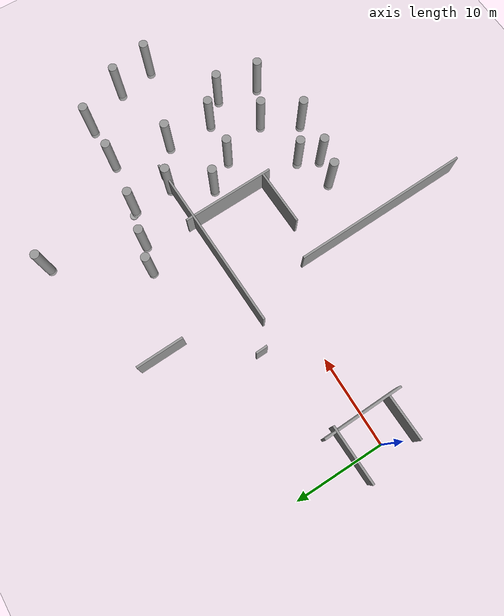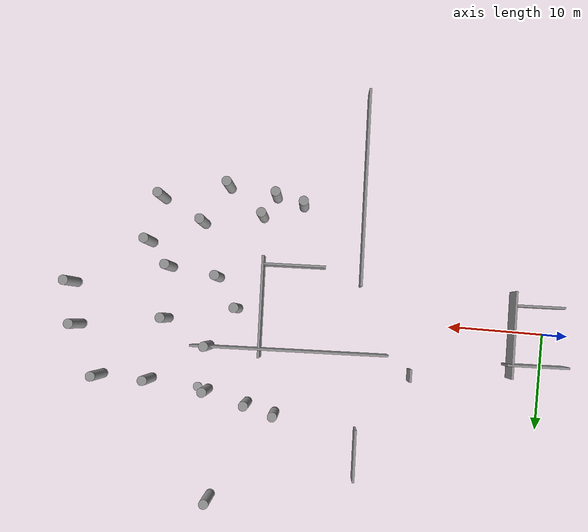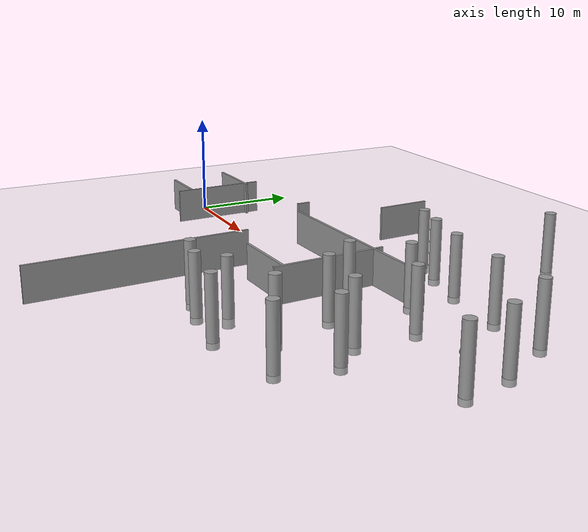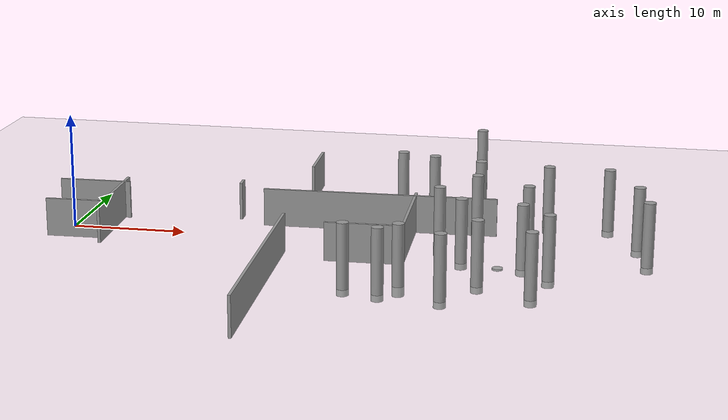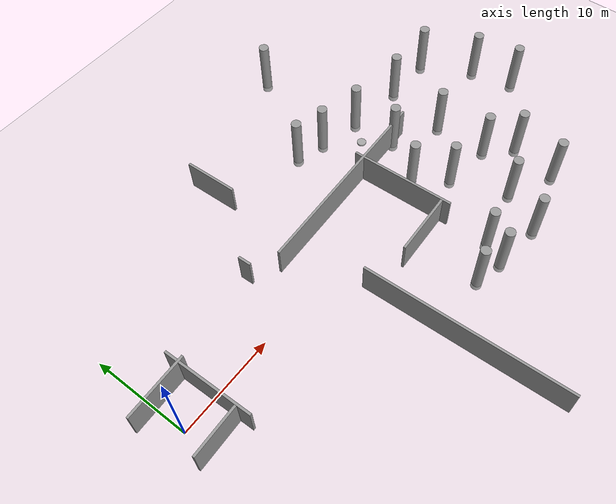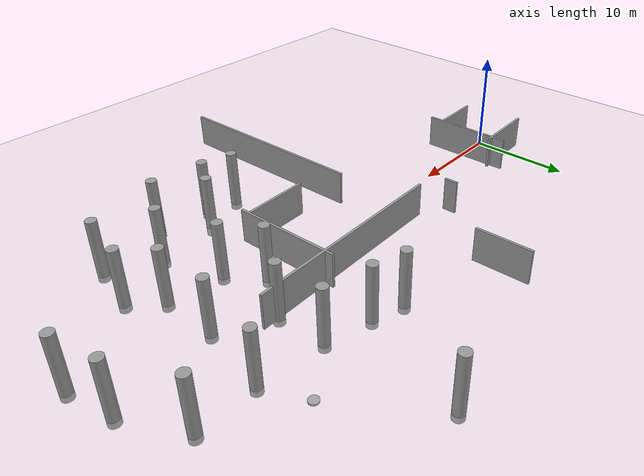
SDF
<sdf version="1.6">
 <world name="default">
  <plugin name="disable_physics" filename="libdisable_physics.so"/>
  <light name="sun" type="directional">
   <cast_shadows>0</cast_shadows>
   <pose>0 0 10 0 -0 0</pose>
   <diffuse>0.8 0.8 0.8 1</diffuse>
   <specular>0.2 0.2 0.2 1</specular>
   <attenuation>
    <range>1000</range>
    <constant>0.9</constant>
    <linear>0.01</linear>
    <quadratic>0.001</quadratic>
   </attenuation>
   <direction>-0.5 0.1 -0.9</direction>
  </light>
  <model name="ground_plane">
   <static>1</static>
   <link name="link">
    <collision name="collision">
     <geometry><plane><normal>0 0 1</normal><size>200 200</size></plane></geometry>
     <surface><friction><ode><mu>100</mu><mu2>50</mu2></ode></friction></surface>
    </collision>
    <visual name="visual">
     <cast_shadows>0</cast_shadows>
     <geometry><plane><normal>0 0 1</normal><size>200 200</size></plane></geometry>
     <material>
      <script><uri>file://media/materials/scripts/gazebo.material</uri><name>Gazebo/Grey</name></script>
     </material>
    </visual>
    <gravity>0</gravity>
   </link>
  </model>
  <physics name="default_physics" default="0" type="ode">
   <max_step_size>0.001</max_step_size>
   <real_time_factor>1</real_time_factor>
   <real_time_update_rate>1000</real_time_update_rate>
  </physics>
  <scene><ambient>0.4 0.4 0.4 1</ambient><background>0.7 0.7 0.7 1</background><shadows>0</shadows></scene>
  <spherical_coordinates>
   <surface_model>EARTH_WGS84</surface_model>
   <latitude_deg>0</latitude_deg>
   <longitude_deg>0</longitude_deg>
   <elevation>0</elevation>
   <heading_deg>0</heading_deg>
  </spherical_coordinates>
  <gravity>0 0 0</gravity>
  <magnetic_field>6e-06 2.3e-05 -4.2e-05</magnetic_field>
  <atmosphere type="adiabatic"/>
  <model name="unit_box_0_0_clone_0">
   <pose>13.8877 5.33164 1.66667 -0.000226 9e-06 0.034068</pose>
   <link name="link">
    <inertial>
     <mass>1</mass>
     <inertia>
      <ixx>0.166667</ixx>
      <ixy>0</ixy>
      <ixz>0</ixz>
      <iyy>0.166667</iyy>
      <iyz>0</iyz>
      <izz>0.166667</izz>
     </inertia>
    </inertial>
    <collision name="collision">
     <geometry><box><size>0.237691 1.30553 3.33454</size></box></geometry>
     <surface><contact><collide_without_contact>1</collide_without_contact></contact></surface>
    </collision>
    <visual name="visual">
     <geometry><box><size>0.237691 1.30553 3.33454</size></box></geometry>
     <material>
      <script><name>Gazebo/Grey</name><uri>file://media/materials/scripts/gazebo.material</uri></script>
     </material>
    </visual>
    <gravity>0</gravity>
   </link>
  </model>
  <model name="unit_cylinder_0">
   <pose>36.5123 8.86063 -4.58861 0 -0 0</pose>
   <link name="link">
    <inertial>
     <mass>1</mass>
     <inertia><ixx>0.145833</ixx><ixy>0</ixy><ixz>0</ixz><iyy>0.145833</iyy><iyz>0</iyz><izz>0.125</izz></inertia>
    </inertial>
    <collision name="collision">
     <geometry><cylinder><radius>0.5</radius><length>0.165744</length></cylinder></geometry>
     <surface><contact><collide_without_contact>1</collide_without_contact></contact></surface>
    </collision>
    <visual name="visual">
     <geometry><cylinder><radius>0.5</radius><length>0.165744</length></cylinder></geometry>
     <material>
      <script><name>Gazebo/Grey</name><uri>file://media/materials/scripts/gazebo.material</uri></script>
     </material>
    </visual>
    <gravity>0</gravity>
   </link>
  </model>
  <model name="unit_cylinder_0_clone_14">
   <pose>30.4731 -9.99792 2.11259 0 -0 0.001073</pose>
   <link name="link">
    <inertial>
     <mass>1</mass>
     <inertia><ixx>0.145833</ixx><ixy>0</ixy><ixz>0</ixz><iyy>0.145833</iyy><iyz>0</iyz><izz>0.125</izz></inertia>
    </inertial>
    <collision name="collision">
     <geometry><cylinder><radius>0.5</radius><length>6.03342</length></cylinder></geometry>
     <surface><contact><collide_without_contact>1</collide_without_contact></contact></surface>
    </collision>
    <visual name="visual">
     <geometry><cylinder><radius>0.5</radius><length>6.03342</length></cylinder></geometry>
     <material>
      <script><name>Gazebo/Grey</name><uri>file://media/materials/scripts/gazebo.material</uri></script>
     </material>
    </visual>
    <gravity>0</gravity>
   </link>
  </model>
  <model name="unit_box_0_0_clone_0_clone">
   <pose>18.9776 14.0221 1.66667 -0.000226 9e-06 0.034061</pose>
   <link name="link">
    <inertial>
     <mass>1</mass>
     <inertia>
      <ixx>0.166667</ixx>
      <ixy>0</ixy>
      <ixz>0</ixz>
      <iyy>0.166667</iyy>
      <iyz>0</iyz>
      <izz>0.166667</izz>
     </inertia>
    </inertial>
    <collision name="collision">
     <geometry><box><size>0.237691 5.35847 3.33454</size></box></geometry>
     <surface><contact><collide_without_contact>1</collide_without_contact></contact></surface>
    </collision>
    <visual name="visual">
     <geometry><box><size>0.237691 5.35847 3.33454</size></box></geometry>
     <material>
      <script><name>Gazebo/Grey</name><uri>file://media/materials/scripts/gazebo.material</uri></script>
     </material>
    </visual>
    <gravity>0</gravity>
   </link>
  </model>
  <model name="unit_box_0_0_clone_0_clone_clone">
   <pose>20.034 -13.669 1.66667 -0.000226 9e-06 0.034061</pose>
   <link name="link">
    <inertial>
     <mass>1</mass>
     <inertia>
      <ixx>0.166667</ixx>
      <ixy>0</ixy>
      <ixz>0</ixz>
      <iyy>0.166667</iyy>
      <iyz>0</iyz>
      <izz>0.166667</izz>
     </inertia>
    </inertial>
    <collision name="collision">
     <geometry><box><size>0.237691 20.4927 3.33454</size></box></geometry>
     <surface><contact><collide_without_contact>1</collide_without_contact></contact></surface>
    </collision>
    <visual name="visual">
     <geometry><box><size>0.237691 20.4927 3.33454</size></box></geometry>
     <material>
      <script><name>Gazebo/Grey</name><uri>file://media/materials/scripts/gazebo.material</uri></script>
     </material>
    </visual>
    <gravity>0</gravity>
   </link>
  </model>
  <model name="unit_box_0_0_clone_0_clone_clone_0">
   <pose>26.5741 3.7947 1.66667 8e-06 0.000226 1.60099</pose>
   <link name="link">
    <inertial>
     <mass>1</mass>
     <inertia>
      <ixx>0.166667</ixx>
      <ixy>0</ixy>
      <ixz>0</ixz>
      <iyy>0.166667</iyy>
      <iyz>0</iyz>
      <izz>0.166667</izz>
     </inertia>
    </inertial>
    <collision name="collision">
     <geometry><box><size>0.237691 20.4928 3.33454</size></box></geometry>
     <surface><contact><collide_without_contact>1</collide_without_contact></contact></surface>
    </collision>
    <visual name="visual">
     <geometry><box><size>0.237691 20.4928 3.33454</size></box></geometry>
     <material>
      <script><name>Gazebo/Grey</name><uri>file://media/materials/scripts/gazebo.material</uri></script>
     </material>
    </visual>
    <gravity>0</gravity>
   </link>
  </model>
  <model name="unit_box_0_0_clone_0_clone_clone_0_clone">
   <pose>29.8508 -0.508676 1.66667 -0.000226 9e-06 0.034061</pose>
   <link name="link">
    <inertial>
     <mass>1</mass>
     <inertia>
      <ixx>0.166667</ixx>
      <ixy>0</ixy>
      <ixz>0</ixz>
      <iyy>0.166667</iyy>
      <iyz>0</iyz>
      <izz>0.166667</izz>
     </inertia>
    </inertial>
    <collision name="collision">
     <geometry><box><size>0.237691 10.584 3.33454</size></box></geometry>
     <surface><contact><collide_without_contact>1</collide_without_contact></contact></surface>
    </collision>
    <visual name="visual">
     <geometry><box><size>0.237691 10.584 3.33454</size></box></geometry>
     <material>
      <script><name>Gazebo/Grey</name><uri>file://media/materials/scripts/gazebo.material</uri></script>
     </material>
    </visual>
    <gravity>0</gravity>
   </link>
  </model>
  <model name="unit_box_0_0_clone_0_clone_clone_0_clone_0">
   <pose>26.6881 -5.02762 1.66667 8e-06 0.000226 1.60099</pose>
   <link name="link">
    <inertial>
     <mass>1</mass>
     <inertia>
      <ixx>0.166667</ixx>
      <ixy>0</ixy>
      <ixz>0</ixz>
      <iyy>0.166667</iyy>
      <iyz>0</iyz>
      <izz>0.166667</izz>
     </inertia>
    </inertial>
    <collision name="collision">
     <geometry><box><size>0.237691 6.4029 3.33454</size></box></geometry>
     <surface><contact><collide_without_contact>1</collide_without_contact></contact></surface>
    </collision>
    <visual name="visual">
     <geometry><box><size>0.237691 6.4029 3.33454</size></box></geometry>
     <material>
      <script><name>Gazebo/Grey</name><uri>file://media/materials/scripts/gazebo.material</uri></script>
     </material>
    </visual>
    <gravity>0</gravity>
   </link>
  </model>
  <model name="unit_box_0_0_clone_0_clone_clone_0_clone_clone">
   <pose>3.56833 0.275438 1.66667 -0.000226 6e-06 0.022264</pose>
   <link name="link">
    <inertial>
     <mass>1</mass>
     <inertia>
      <ixx>0.166667</ixx>
      <ixy>0</ixy>
      <ixz>0</ixz>
      <iyy>0.166667</iyy>
      <iyz>0</iyz>
      <izz>0.166667</izz>
     </inertia>
    </inertial>
    <collision name="collision">
     <geometry><box><size>0.237691 9.07342 3.33454</size></box></geometry>
     <surface><contact><collide_without_contact>1</collide_without_contact></contact></surface>
    </collision>
    <visual name="visual">
     <geometry><box><size>0.237691 9.07342 3.33454</size></box></geometry>
     <material>
      <script><name>Gazebo/Grey</name><uri>file://media/materials/scripts/gazebo.material</uri></script>
     </material>
    </visual>
    <gravity>0</gravity>
   </link>
  </model>
  <model name="unit_box_0_0_clone_0_clone_clone_0_clone_1">
   <pose>0.87092 3.30763 1.66667 8e-06 0.000226 1.60099</pose>
   <link name="link">
    <inertial>
     <mass>1</mass>
     <inertia>
      <ixx>0.166667</ixx>
      <ixy>0</ixy>
      <ixz>0</ixz>
      <iyy>0.166667</iyy>
      <iyz>0</iyz>
      <izz>0.166667</izz>
     </inertia>
    </inertial>
    <collision name="collision">
     <geometry><box><size>0.237691 6.40289 3.33454</size></box></geometry>
     <surface><contact><collide_without_contact>1</collide_without_contact></contact></surface>
    </collision>
    <visual name="visual">
     <geometry><box><size>0.237691 6.40289 3.33454</size></box></geometry>
     <material>
      <script><name>Gazebo/Grey</name><uri>file://media/materials/scripts/gazebo.material</uri></script>
     </material>
    </visual>
    <gravity>0</gravity>
   </link>
  </model>
  <model name="unit_box_0_0_clone_0_clone_clone_0_clone_1_clone">
   <pose>1.12991 -2.86226 1.66667 8e-06 0.000226 1.60099</pose>
   <link name="link">
    <inertial>
     <mass>1</mass>
     <inertia>
      <ixx>0.166667</ixx>
      <ixy>0</ixy>
      <ixz>0</ixz>
      <iyy>0.166667</iyy>
      <iyz>0</iyz>
      <izz>0.166667</izz>
     </inertia>
    </inertial>
    <collision name="collision">
     <geometry><box><size>0.237691 5.13398 3.33454</size></box></geometry>
     <surface><contact><collide_without_contact>1</collide_without_contact></contact></surface>
    </collision>
    <visual name="visual">
     <geometry><box><size>0.237691 5.13398 3.33454</size></box></geometry>
     <material>
      <script><name>Gazebo/Grey</name><uri>file://media/materials/scripts/gazebo.material</uri></script>
     </material>
    </visual>
    <gravity>0</gravity>
   </link>
  </model>
  <model name="unit_cylinder_0_clone_14_clone">
   <pose>34.8945 8.63353 2.40172 0 -0 0.001073</pose>
   <link name="link">
    <inertial>
     <mass>1</mass>
     <inertia><ixx>0.145833</ixx><ixy>0</ixy><ixz>0</ixz><iyy>0.145833</iyy><iyz>0</iyz><izz>0.125</izz></inertia>
    </inertial>
    <collision name="collision">
     <geometry><cylinder><radius>0.5</radius><length>6.03342</length></cylinder></geometry>
     <surface><contact><collide_without_contact>1</collide_without_contact></contact></surface>
    </collision>
    <visual name="visual">
     <geometry><cylinder><radius>0.5</radius><length>6.03342</length></cylinder></geometry>
     <material>
      <script><name>Gazebo/Grey</name><uri>file://media/materials/scripts/gazebo.material</uri></script>
     </material>
    </visual>
    <gravity>0</gravity>
   </link>
  </model>
  <model name="unit_cylinder_0_clone_14_clone_0">
   <pose>39.7254 1.47591 2.40172 0 -0 0.001073</pose>
   <link name="link">
    <inertial>
     <mass>1</mass>
     <inertia><ixx>0.145833</ixx><ixy>0</ixy><ixz>0</ixz><iyy>0.145833</iyy><iyz>0</iyz><izz>0.125</izz></inertia>
    </inertial>
    <collision name="collision">
     <geometry><cylinder><radius>0.5</radius><length>6.03342</length></cylinder></geometry>
     <surface><contact><collide_without_contact>1</collide_without_contact></contact></surface>
    </collision>
    <visual name="visual">
     <geometry><cylinder><radius>0.5</radius><length>6.03342</length></cylinder></geometry>
     <material>
      <script><name>Gazebo/Grey</name><uri>file://media/materials/scripts/gazebo.material</uri></script>
     </material>
    </visual>
    <gravity>0</gravity>
   </link>
  </model>
  <model name="unit_cylinder_0_clone_14_clone_1">
   <pose>34.6294 -3.2579 2.40172 0 -0 0.001073</pose>
   <link name="link">
    <inertial>
     <mass>1</mass>
     <inertia><ixx>0.145833</ixx><ixy>0</ixy><ixz>0</ixz><iyy>0.145833</iyy><iyz>0</iyz><izz>0.125</izz></inertia>
    </inertial>
    <collision name="collision">
     <geometry><cylinder><radius>0.5</radius><length>6.03342</length></cylinder></geometry>
     <surface><contact><collide_without_contact>1</collide_without_contact></contact></surface>
    </collision>
    <visual name="visual">
     <geometry><cylinder><radius>0.5</radius><length>6.03342</length></cylinder></geometry>
     <material>
      <script><name>Gazebo/Grey</name><uri>file://media/materials/scripts/gazebo.material</uri></script>
     </material>
    </visual>
    <gravity>0</gravity>
   </link>
  </model>
  <model name="unit_cylinder_0_clone_14_clone_2">
   <pose>35.1198 4.01966 2.40172 0 -0 0.001073</pose>
   <link name="link">
    <inertial>
     <mass>1</mass>
     <inertia><ixx>0.145833</ixx><ixy>0</ixy><ixz>0</ixz><iyy>0.145833</iyy><iyz>0</iyz><izz>0.125</izz></inertia>
    </inertial>
    <collision name="collision">
     <geometry><cylinder><radius>0.5</radius><length>6.03342</length></cylinder></geometry>
     <surface><contact><collide_without_contact>1</collide_without_contact></contact></surface>
    </collision>
    <visual name="visual">
     <geometry><cylinder><radius>0.5</radius><length>6.03342</length></cylinder></geometry>
     <material>
      <script><name>Gazebo/Grey</name><uri>file://media/materials/scripts/gazebo.material</uri></script>
     </material>
    </visual>
    <gravity>0</gravity>
   </link>
  </model>
  <model name="unit_cylinder_0_clone_14_clone_3">
   <pose>40.9597 7.945 2.40172 0 -0 0.001073</pose>
   <link name="link">
    <inertial>
     <mass>1</mass>
     <inertia><ixx>0.145833</ixx><ixy>0</ixy><ixz>0</ixz><iyy>0.145833</iyy><iyz>0</iyz><izz>0.125</izz></inertia>
    </inertial>
    <collision name="collision">
     <geometry><cylinder><radius>0.5</radius><length>6.03342</length></cylinder></geometry>
     <surface><contact><collide_without_contact>1</collide_without_contact></contact></surface>
    </collision>
    <visual name="visual">
     <geometry><cylinder><radius>0.5</radius><length>6.03342</length></cylinder></geometry>
     <material>
      <script><name>Gazebo/Grey</name><uri>file://media/materials/scripts/gazebo.material</uri></script>
     </material>
    </visual>
    <gravity>0</gravity>
   </link>
  </model>
  <model name="unit_cylinder_0_clone_14_clone_4">
   <pose>48.8594 2.85128 2.40172 0 -0 0.001073</pose>
   <link name="link">
    <inertial>
     <mass>1</mass>
     <inertia><ixx>0.145833</ixx><ixy>0</ixy><ixz>0</ixz><iyy>0.145833</iyy><iyz>0</iyz><izz>0.125</izz></inertia>
    </inertial>
    <collision name="collision">
     <geometry><cylinder><radius>0.5</radius><length>6.03342</length></cylinder></geometry>
     <surface><contact><collide_without_contact>1</collide_without_contact></contact></surface>
    </collision>
    <visual name="visual">
     <geometry><cylinder><radius>0.5</radius><length>6.03342</length></cylinder></geometry>
     <material>
      <script><name>Gazebo/Grey</name><uri>file://media/materials/scripts/gazebo.material</uri></script>
     </material>
    </visual>
    <gravity>0</gravity>
   </link>
  </model>
  <model name="unit_cylinder_0_clone_14_clone_5">
   <pose>42.0529 -6.41265 2.40172 0 -0 0.001073</pose>
   <link name="link">
    <inertial>
     <mass>1</mass>
     <inertia><ixx>0.145833</ixx><ixy>0</ixy><ixz>0</ixz><iyy>0.145833</iyy><iyz>0</iyz><izz>0.125</izz></inertia>
    </inertial>
    <collision name="collision">
     <geometry><cylinder><radius>0.5</radius><length>6.03342</length></cylinder></geometry>
     <surface><contact><collide_without_contact>1</collide_without_contact></contact></surface>
    </collision>
    <visual name="visual">
     <geometry><cylinder><radius>0.5</radius><length>6.03342</length></cylinder></geometry>
     <material>
      <script><name>Gazebo/Grey</name><uri>file://media/materials/scripts/gazebo.material</uri></script>
     </material>
    </visual>
    <gravity>0</gravity>
   </link>
  </model>
  <model name="unit_cylinder_0_clone_14_clone_6">
   <pose>36.6057 -8.82465 2.40172 0 -0 0.001073</pose>
   <link name="link">
    <inertial>
     <mass>1</mass>
     <inertia><ixx>0.145833</ixx><ixy>0</ixy><ixz>0</ixz><iyy>0.145833</iyy><iyz>0</iyz><izz>0.125</izz></inertia>
    </inertial>
    <collision name="collision">
     <geometry><cylinder><radius>0.5</radius><length>6.03342</length></cylinder></geometry>
     <surface><contact><collide_without_contact>1</collide_without_contact></contact></surface>
    </collision>
    <visual name="visual">
     <geometry><cylinder><radius>0.5</radius><length>6.03342</length></cylinder></geometry>
     <material>
      <script><name>Gazebo/Grey</name><uri>file://media/materials/scripts/gazebo.material</uri></script>
     </material>
    </visual>
    <gravity>0</gravity>
   </link>
  </model>
  <model name="unit_cylinder_0_clone_14_clone_7">
   <pose>49.7522 -1.51213 2.40172 0 -0 0.001073</pose>
   <link name="link">
    <inertial>
     <mass>1</mass>
     <inertia><ixx>0.145833</ixx><ixy>0</ixy><ixz>0</ixz><iyy>0.145833</iyy><iyz>0</iyz><izz>0.125</izz></inertia>
    </inertial>
    <collision name="collision">
     <geometry><cylinder><radius>0.5</radius><length>6.03342</length></cylinder></geometry>
     <surface><contact><collide_without_contact>1</collide_without_contact></contact></surface>
    </collision>
    <visual name="visual">
     <geometry><cylinder><radius>0.5</radius><length>6.03342</length></cylinder></geometry>
     <material>
      <script><name>Gazebo/Grey</name><uri>file://media/materials/scripts/gazebo.material</uri></script>
     </material>
    </visual>
    <gravity>0</gravity>
   </link>
  </model>
  <model name="unit_cylinder_0_clone_14_clone_8">
   <pose>46.1829 7.9359 2.40172 0 -0 0.001073</pose>
   <link name="link">
    <inertial>
     <mass>1</mass>
     <inertia><ixx>0.145833</ixx><ixy>0</ixy><ixz>0</ixz><iyy>0.145833</iyy><iyz>0</iyz><izz>0.125</izz></inertia>
    </inertial>
    <collision name="collision">
     <geometry><cylinder><radius>0.5</radius><length>6.03342</length></cylinder></geometry>
     <surface><contact><collide_without_contact>1</collide_without_contact></contact></surface>
    </collision>
    <visual name="visual">
     <geometry><cylinder><radius>0.5</radius><length>6.03342</length></cylinder></geometry>
     <material>
      <script><name>Gazebo/Grey</name><uri>file://media/materials/scripts/gazebo.material</uri></script>
     </material>
    </visual>
    <gravity>0</gravity>
   </link>
  </model>
  <model name="unit_cylinder_0_clone_14_clone_9">
   <pose>30.626 9.6448 2.40172 0 -0 0.001073</pose>
   <link name="link">
    <inertial>
     <mass>1</mass>
     <inertia><ixx>0.145833</ixx><ixy>0</ixy><ixz>0</ixz><iyy>0.145833</iyy><iyz>0</iyz><izz>0.125</izz></inertia>
    </inertial>
    <collision name="collision">
     <geometry><cylinder><radius>0.5</radius><length>6.03342</length></cylinder></geometry>
     <surface><contact><collide_without_contact>1</collide_without_contact></contact></surface>
    </collision>
    <visual name="visual">
     <geometry><cylinder><radius>0.5</radius><length>6.03342</length></cylinder></geometry>
     <material>
      <script><name>Gazebo/Grey</name><uri>file://media/materials/scripts/gazebo.material</uri></script>
     </material>
    </visual>
    <gravity>0</gravity>
   </link>
  </model>
  <model name="unit_cylinder_0_clone_14_clone_10">
   <pose>27.6346 10.4863 2.40172 0 -0 0.001073</pose>
   <link name="link">
    <inertial>
     <mass>1</mass>
     <inertia><ixx>0.145833</ixx><ixy>0</ixy><ixz>0</ixz><iyy>0.145833</iyy><iyz>0</iyz><izz>0.125</izz></inertia>
    </inertial>
    <collision name="collision">
     <geometry><cylinder><radius>0.5</radius><length>6.03342</length></cylinder></geometry>
     <surface><contact><collide_without_contact>1</collide_without_contact></contact></surface>
    </collision>
    <visual name="visual">
     <geometry><cylinder><radius>0.5</radius><length>6.03342</length></cylinder></geometry>
     <material>
      <script><name>Gazebo/Grey</name><uri>file://media/materials/scripts/gazebo.material</uri></script>
     </material>
    </visual>
    <gravity>0</gravity>
   </link>
  </model>
  <model name="unit_cylinder_0_clone_14_clone_11">
   <pose>39.7289 -3.95269 2.40172 0 -0 0.001073</pose>
   <link name="link">
    <inertial>
     <mass>1</mass>
     <inertia><ixx>0.145833</ixx><ixy>0</ixy><ixz>0</ixz><iyy>0.145833</iyy><iyz>0</iyz><izz>0.125</izz></inertia>
    </inertial>
    <collision name="collision">
     <geometry><cylinder><radius>0.5</radius><length>6.03342</length></cylinder></geometry>
     <surface><contact><collide_without_contact>1</collide_without_contact></contact></surface>
    </collision>
    <visual name="visual">
     <geometry><cylinder><radius>0.5</radius><length>6.03342</length></cylinder></geometry>
     <material>
      <script><name>Gazebo/Grey</name><uri>file://media/materials/scripts/gazebo.material</uri></script>
     </material>
    </visual>
    <gravity>0</gravity>
   </link>
  </model>
  <model name="unit_cylinder_0_clone_14_clone_12">
   <pose>34.1973 -12.8246 2.40172 0 -0 0.001073</pose>
   <link name="link">
    <inertial>
     <mass>1</mass>
     <inertia><ixx>0.145833</ixx><ixy>0</ixy><ixz>0</ixz><iyy>0.145833</iyy><iyz>0</iyz><izz>0.125</izz></inertia>
    </inertial>
    <collision name="collision">
     <geometry><cylinder><radius>0.5</radius><length>6.03342</length></cylinder></geometry>
     <surface><contact><collide_without_contact>1</collide_without_contact></contact></surface>
    </collision>
    <visual name="visual">
     <geometry><cylinder><radius>0.5</radius><length>6.03342</length></cylinder></geometry>
     <material>
      <script><name>Gazebo/Grey</name><uri>file://media/materials/scripts/gazebo.material</uri></script>
     </material>
    </visual>
    <gravity>0</gravity>
   </link>
  </model>
  <model name="unit_cylinder_0_clone_14_clone_13">
   <pose>29.184 -12.1897 2.40172 0 -0 0.001073</pose>
   <link name="link">
    <inertial>
     <mass>1</mass>
     <inertia><ixx>0.145833</ixx><ixy>0</ixy><ixz>0</ixz><iyy>0.145833</iyy><iyz>0</iyz><izz>0.125</izz></inertia>
    </inertial>
    <collision name="collision">
     <geometry><cylinder><radius>0.5</radius><length>6.03342</length></cylinder></geometry>
     <surface><contact><collide_without_contact>1</collide_without_contact></contact></surface>
    </collision>
    <visual name="visual">
     <geometry><cylinder><radius>0.5</radius><length>6.03342</length></cylinder></geometry>
     <material>
      <script><name>Gazebo/Grey</name><uri>file://media/materials/scripts/gazebo.material</uri></script>
     </material>
    </visual>
    <gravity>0</gravity>
   </link>
  </model>
  <model name="unit_cylinder_0_clone_14_clone_14">
   <pose>26.2784 -11.4682 2.40172 0 -0 0.001073</pose>
   <link name="link">
    <inertial>
     <mass>1</mass>
     <inertia><ixx>0.145833</ixx><ixy>0</ixy><ixz>0</ixz><iyy>0.145833</iyy><iyz>0</iyz><izz>0.125</izz></inertia>
    </inertial>
    <collision name="collision">
     <geometry><cylinder><radius>0.5</radius><length>6.03342</length></cylinder></geometry>
     <surface><contact><collide_without_contact>1</collide_without_contact></contact></surface>
    </collision>
    <visual name="visual">
     <geometry><cylinder><radius>0.5</radius><length>6.03342</length></cylinder></geometry>
     <material>
      <script><name>Gazebo/Grey</name><uri>file://media/materials/scripts/gazebo.material</uri></script>
     </material>
    </visual>
    <gravity>0</gravity>
   </link>
  </model>
  <model name="unit_cylinder_0_clone_14_clone_15">
   <pose>33.7515 19.7444 2.40172 0 -0 0.001073</pose>
   <link name="link">
    <inertial>
     <mass>1</mass>
     <inertia><ixx>0.145833</ixx><ixy>0</ixy><ixz>0</ixz><iyy>0.145833</iyy><iyz>0</iyz><izz>0.125</izz></inertia>
    </inertial>
    <collision name="collision">
     <geometry><cylinder><radius>0.5</radius><length>6.03342</length></cylinder></geometry>
     <surface><contact><collide_without_contact>1</collide_without_contact></contact></surface>
    </collision>
    <visual name="visual">
     <geometry><cylinder><radius>0.5</radius><length>6.03342</length></cylinder></geometry>
     <material>
      <script><name>Gazebo/Grey</name><uri>file://media/materials/scripts/gazebo.material</uri></script>
     </material>
    </visual>
    <gravity>0</gravity>
   </link>
  </model>
  <model name="unit_cylinder_0_clone_14_clone_16">
   <pose>32.4082 -0.136858 2.40172 0 -0 0.001073</pose>
   <link name="link">
    <inertial>
     <mass>1</mass>
     <inertia><ixx>0.145833</ixx><ixy>0</ixy><ixz>0</ixz><iyy>0.145833</iyy><iyz>0</iyz><izz>0.125</izz></inertia>
    </inertial>
    <collision name="collision">
     <geometry><cylinder><radius>0.5</radius><length>6.03342</length></cylinder></geometry>
     <surface><contact><collide_without_contact>1</collide_without_contact></contact></surface>
    </collision>
    <visual name="visual">
     <geometry><cylinder><radius>0.5</radius><length>6.03342</length></cylinder></geometry>
     <material>
      <script><name>Gazebo/Grey</name><uri>file://media/materials/scripts/gazebo.material</uri></script>
     </material>
    </visual>
    <gravity>0</gravity>
   </link>
  </model>
  <model name="unit_cylinder_0_clone_14_clone_17">
   <pose>41.0492 -11.1268 2.40172 0 -0 0.001073</pose>
   <link name="link">
    <inertial>
     <mass>1</mass>
     <inertia><ixx>0.145833</ixx><ixy>0</ixy><ixz>0</ixz><iyy>0.145833</iyy><iyz>0</iyz><izz>0.125</izz></inertia>
    </inertial>
    <collision name="collision">
     <geometry><cylinder><radius>0.5</radius><length>6.03342</length></cylinder></geometry>
     <surface><contact><collide_without_contact>1</collide_without_contact></contact></surface>
    </collision>
    <visual name="visual">
     <geometry><cylinder><radius>0.5</radius><length>6.03342</length></cylinder></geometry>
     <material>
      <script><name>Gazebo/Grey</name><uri>file://media/materials/scripts/gazebo.material</uri></script>
     </material>
    </visual>
    <gravity>0</gravity>
   </link>
  </model>
 </world>
</sdf>
